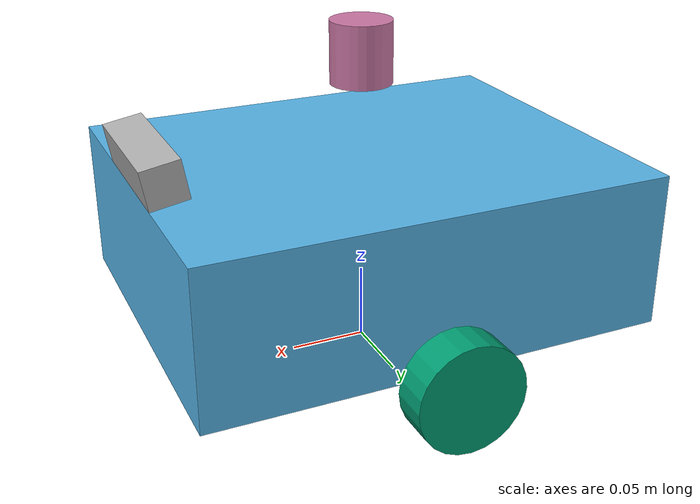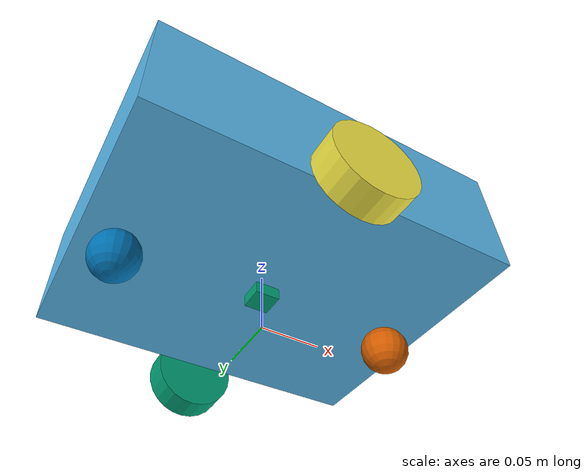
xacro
<?xml version="1.0"?>
<robot name="indoor_bot" xmlns:xacro="http://www.ros.org/wiki/xacro">

  <xacro:include filename="$(find indoor_bot_description)/urdf/inertial_macros.xacro"/>

  <!-- Adds a boundingbox_camera pair for training-data generation
       (src/indoor_bot_evaluation/scripts/datagen.py) when true. Default
       false leaves normal simulation and the ablation unchanged. -->
  <xacro:arg name="datagen" default="false"/>

  <!-- ================= Properties ================= -->

  <!-- base -->
  <xacro:property name="base_x" value="0.30"/>
  <xacro:property name="base_y" value="0.24"/>
  <xacro:property name="base_z" value="0.10"/>
  <xacro:property name="base_mass" value="3.0"/>

  <!-- drive wheels -->
  <xacro:property name="wheel_radius" value="0.035"/>
  <xacro:property name="wheel_width" value="0.025"/>
  <xacro:property name="wheel_mass" value="0.2"/>
  <xacro:property name="wheel_y_offset" value="0.14"/>

  <!-- rear caster -->
  <xacro:property name="caster_radius" value="0.02"/>
  <xacro:property name="caster_mass" value="0.05"/>
  <xacro:property name="caster_x_offset" value="-0.12"/>
  <xacro:property name="caster_front_x_offset" value="0.12"/>

  <!-- base_footprint -> base_link: wheel-radius height above the ground -->
  <xacro:property name="base_link_z" value="${wheel_radius}"/>

  <!-- rear caster sits level with the driven wheels -->
  <xacro:property name="caster_z_offset" value="${-wheel_radius + caster_radius}"/>

  <!-- 2D LiDAR -->
  <xacro:property name="scan_height" value="0.20"/> <!-- above ground -->
  <xacro:property name="scan_z_offset" value="${scan_height - base_link_z}"/>
  <xacro:property name="scan_radius" value="0.020"/>
  <xacro:property name="scan_length" value="0.040"/>
  <xacro:property name="scan_mass" value="0.05"/>

  <!-- RGB-D camera -->
  <xacro:property name="camera_height" value="0.15"/> <!-- above ground -->
  <xacro:property name="camera_z_offset" value="${camera_height - base_link_z}"/>
  <xacro:property name="camera_x_offset" value="${base_x / 2 - 0.01}"/>
  <xacro:property name="camera_pitch" value="0.17"/> <!-- radians, tilted down -->
  <xacro:property name="camera_x" value="0.025"/>
  <xacro:property name="camera_y" value="0.090"/>
  <xacro:property name="camera_z" value="0.025"/>
  <xacro:property name="camera_mass" value="0.05"/>

  <!-- IMU -->
  <xacro:property name="imu_size" value="0.020"/>
  <xacro:property name="imu_mass" value="0.01"/>

  <!-- ================= base_footprint / base_link ================= -->

  <link name="base_footprint"/>

  <joint name="base_joint" type="fixed">
    <parent link="base_footprint"/>
    <child link="base_link"/>
    <origin xyz="0 0 ${base_link_z}" rpy="0 0 0"/>
  </joint>

  <link name="base_link">
    <visual>
      <origin xyz="0 0 ${base_z / 2}" rpy="0 0 0"/>
      <geometry>
        <box size="${base_x} ${base_y} ${base_z}"/>
      </geometry>
    </visual>
    <collision>
      <origin xyz="0 0 ${base_z / 2}" rpy="0 0 0"/>
      <geometry>
        <box size="${base_x} ${base_y} ${base_z}"/>
      </geometry>
    </collision>
    <xacro:inertia_box mass="${base_mass}" x="${base_x}" y="${base_y}" z="${base_z}">
      <origin xyz="0 0 ${base_z / 2}" rpy="0 0 0"/>
    </xacro:inertia_box>
  </link>

  <!-- ================= drive wheels ================= -->

  <xacro:macro name="drive_wheel" params="prefix y_reflect">
    <link name="${prefix}_wheel_link">
      <visual>
        <origin xyz="0 0 0" rpy="${pi / 2} 0 0"/>
        <geometry>
          <cylinder radius="${wheel_radius}" length="${wheel_width}"/>
        </geometry>
      </visual>
      <collision>
        <origin xyz="0 0 0" rpy="${pi / 2} 0 0"/>
        <geometry>
          <cylinder radius="${wheel_radius}" length="${wheel_width}"/>
        </geometry>
      </collision>
      <xacro:inertia_cylinder mass="${wheel_mass}" radius="${wheel_radius}" length="${wheel_width}">
        <origin xyz="0 0 0" rpy="${pi / 2} 0 0"/>
      </xacro:inertia_cylinder>
    </link>

    <joint name="${prefix}_wheel_joint" type="continuous">
      <parent link="base_link"/>
      <child link="${prefix}_wheel_link"/>
      <origin xyz="0 ${y_reflect * wheel_y_offset} 0" rpy="0 0 0"/>
      <axis xyz="0 1 0"/>
    </joint>
  </xacro:macro>

  <xacro:drive_wheel prefix="left" y_reflect="1"/>
  <xacro:drive_wheel prefix="right" y_reflect="-1"/>

  <!-- ================= rear caster ================= -->

  <link name="caster_link">
    <visual>
      <geometry>
        <sphere radius="${caster_radius}"/>
      </geometry>
    </visual>
    <collision>
      <geometry>
        <sphere radius="${caster_radius}"/>
      </geometry>
    </collision>
    <xacro:inertia_sphere mass="${caster_mass}" radius="${caster_radius}">
      <origin xyz="0 0 0" rpy="0 0 0"/>
    </xacro:inertia_sphere>
  </link>

  <joint name="caster_joint" type="fixed">
    <parent link="base_link"/>
    <child link="caster_link"/>
    <origin xyz="${caster_x_offset} 0 ${caster_z_offset}" rpy="0 0 0"/>
  </joint>

  <!-- front caster: stops the body tipping forward -->

  <link name="front_caster_link">
    <visual>
      <geometry>
        <sphere radius="${caster_radius}"/>
      </geometry>
    </visual>
    <collision>
      <geometry>
        <sphere radius="${caster_radius}"/>
      </geometry>
    </collision>
    <xacro:inertia_sphere mass="${caster_mass}" radius="${caster_radius}">
      <origin xyz="0 0 0" rpy="0 0 0"/>
    </xacro:inertia_sphere>
  </link>

  <joint name="front_caster_joint" type="fixed">
    <parent link="base_link"/>
    <child link="front_caster_link"/>
    <origin xyz="${caster_front_x_offset} 0 ${caster_z_offset}" rpy="0 0 0"/>
  </joint>

  <!-- ================= base_scan (2D LiDAR) ================= -->

  <link name="base_scan">
    <visual>
      <geometry>
        <cylinder radius="${scan_radius}" length="${scan_length}"/>
      </geometry>
    </visual>
    <collision>
      <geometry>
        <cylinder radius="${scan_radius}" length="${scan_length}"/>
      </geometry>
    </collision>
    <xacro:inertia_cylinder mass="${scan_mass}" radius="${scan_radius}" length="${scan_length}">
      <origin xyz="0 0 0" rpy="0 0 0"/>
    </xacro:inertia_cylinder>
  </link>

  <joint name="scan_joint" type="fixed">
    <parent link="base_link"/>
    <child link="base_scan"/>
    <origin xyz="0 0 ${scan_z_offset}" rpy="0 0 0"/>
  </joint>

  <!-- ================= camera_link (RGB-D body) ================= -->

  <link name="camera_link">
    <visual>
      <geometry>
        <box size="${camera_x} ${camera_y} ${camera_z}"/>
      </geometry>
    </visual>
    <collision>
      <geometry>
        <box size="${camera_x} ${camera_y} ${camera_z}"/>
      </geometry>
    </collision>
    <xacro:inertia_box mass="${camera_mass}" x="${camera_x}" y="${camera_y}" z="${camera_z}">
      <origin xyz="0 0 0" rpy="0 0 0"/>
    </xacro:inertia_box>
  </link>

  <joint name="camera_joint" type="fixed">
    <parent link="base_link"/>
    <child link="camera_link"/>
    <origin xyz="${camera_x_offset} 0 ${camera_z_offset}" rpy="0 ${camera_pitch} 0"/>
  </joint>

  <!-- optical frames: z forward, x right, y down (REP-103), no offset from camera_link -->

  <link name="camera_color_optical_frame"/>

  <joint name="camera_color_optical_joint" type="fixed">
    <parent link="camera_link"/>
    <child link="camera_color_optical_frame"/>
    <origin xyz="0 0 0" rpy="${-pi / 2} 0 ${-pi / 2}"/>
  </joint>

  <link name="camera_depth_optical_frame"/>

  <joint name="camera_depth_optical_joint" type="fixed">
    <parent link="camera_link"/>
    <child link="camera_depth_optical_frame"/>
    <origin xyz="0 0 0" rpy="${-pi / 2} 0 ${-pi / 2}"/>
  </joint>

  <!-- ================= imu_link ================= -->

  <link name="imu_link">
    <visual>
      <geometry>
        <box size="${imu_size} ${imu_size} ${imu_size}"/>
      </geometry>
    </visual>
    <collision>
      <geometry>
        <box size="${imu_size} ${imu_size} ${imu_size}"/>
      </geometry>
    </collision>
    <xacro:inertia_box mass="${imu_mass}" x="${imu_size}" y="${imu_size}" z="${imu_size}">
      <origin xyz="0 0 0" rpy="0 0 0"/>
    </xacro:inertia_box>
  </link>

  <joint name="imu_joint" type="fixed">
    <parent link="base_link"/>
    <child link="imu_link"/>
    <origin xyz="0 0 0" rpy="0 0 0"/>
  </joint>

  <!-- Gazebo-only plugins/sensors, kept out of the base description.
       Included last since it references properties and links defined above. -->
  <xacro:include filename="$(find indoor_bot_description)/urdf/indoor_bot.gazebo.xacro"/>

</robot>

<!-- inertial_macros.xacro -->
<robot xmlns:xacro="http://www.ros.org/wiki/xacro">

  <!-- Solid box, standard formula, evaluated in the frame given by *origin. -->
  <xacro:macro name="inertia_box" params="mass x y z *origin">
    <inertial>
      <xacro:insert_block name="origin"/>
      <mass value="${mass}"/>
      <inertia
        ixx="${(1/12) * mass * (y*y + z*z)}" ixy="0.0" ixz="0.0"
        iyy="${(1/12) * mass * (x*x + z*z)}" iyz="0.0"
        izz="${(1/12) * mass * (x*x + y*y)}"/>
    </inertial>
  </xacro:macro>

  <!-- Solid cylinder, axis along local z of the frame given by *origin. -->
  <xacro:macro name="inertia_cylinder" params="mass radius length *origin">
    <inertial>
      <xacro:insert_block name="origin"/>
      <mass value="${mass}"/>
      <inertia
        ixx="${(1/12) * mass * (3*radius*radius + length*length)}" ixy="0.0" ixz="0.0"
        iyy="${(1/12) * mass * (3*radius*radius + length*length)}" iyz="0.0"
        izz="${(1/2) * mass * radius*radius}"/>
    </inertial>
  </xacro:macro>

  <!-- Solid sphere. -->
  <xacro:macro name="inertia_sphere" params="mass radius *origin">
    <inertial>
      <xacro:insert_block name="origin"/>
      <mass value="${mass}"/>
      <inertia
        ixx="${(2/5) * mass * radius*radius}" ixy="0.0" ixz="0.0"
        iyy="${(2/5) * mass * radius*radius}" iyz="0.0"
        izz="${(2/5) * mass * radius*radius}"/>
    </inertial>
  </xacro:macro>

</robot>
